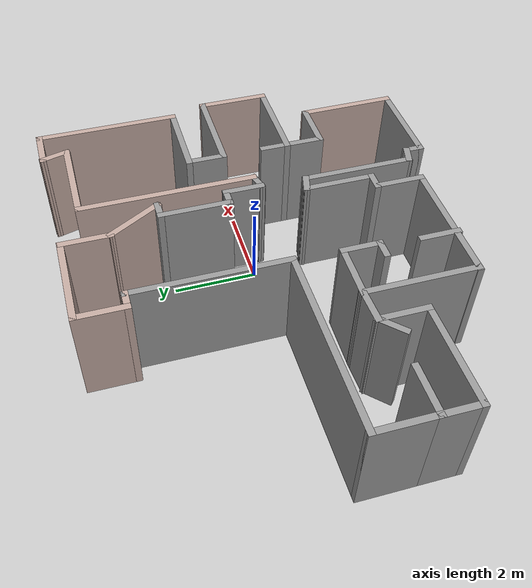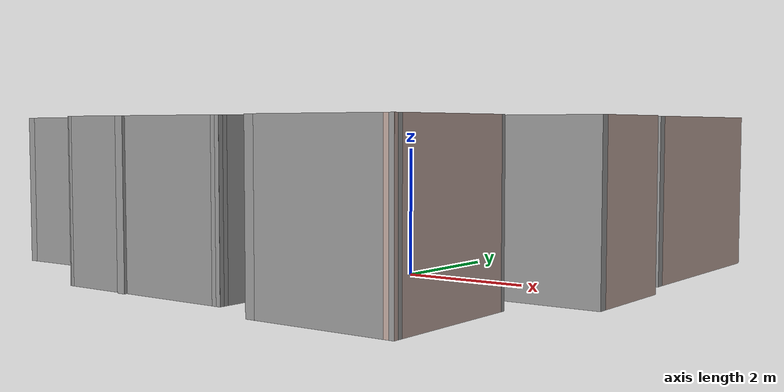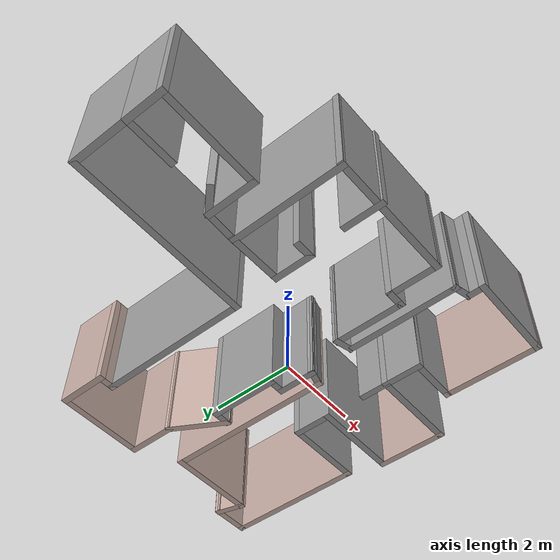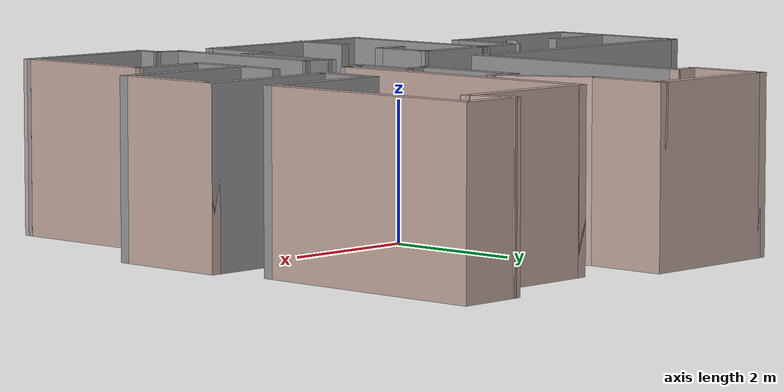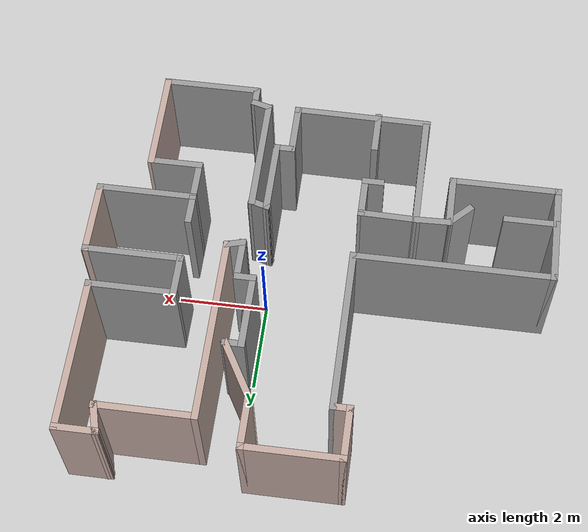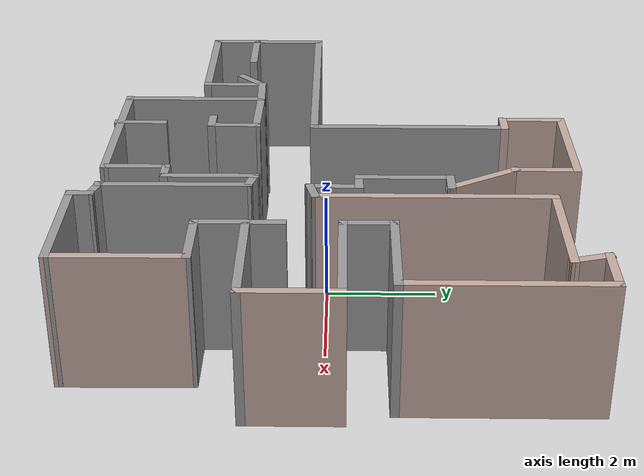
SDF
<?xml version='1.0'?>
<sdf version='1.6'>
  <model name='map_16'>
    <pose frame=''>-1.22365 0.054974 0 0 -0 0</pose>
    <link name='Wall_0'>
      <collision name='Wall_0_Collision'>
        <geometry>
          <box>
            <size>2.25 0.15 2.5</size>
          </box>
        </geometry>
        <pose frame=''>0 0 1.25 0 -0 0</pose>
      </collision>
      <visual name='Wall_0_Visual'>
        <pose frame=''>0 0 1.25 0 -0 0</pose>
        <geometry>
          <box>
            <size>2.25 0.15 2.5</size>
          </box>
        </geometry>
        <material>
          <script>
            <uri>file://media/materials/scripts/gazebo.material</uri>
            <name>Gazebo/Grey</name>
          </script>
          <ambient>0.180392 0.203922 0.211765 1</ambient>
        </material>
        <meta>
          <layer>0</layer>
        </meta>
      </visual>
      <pose frame=''>3.04726 -4.44921 0 0 -0 3.14159</pose>
    </link>
    <link name='Wall_1'>
      <collision name='Wall_1_Collision'>
        <geometry>
          <box>
            <size>0.5 0.15 2.5</size>
          </box>
        </geometry>
        <pose frame=''>0 0 1.25 0 -0 0</pose>
      </collision>
      <visual name='Wall_1_Visual'>
        <pose frame=''>0 0 1.25 0 -0 0</pose>
        <geometry>
          <box>
            <size>0.5 0.15 2.5</size>
          </box>
        </geometry>
        <material>
          <script>
            <uri>file://media/materials/scripts/gazebo.material</uri>
            <name>Gazebo/Grey</name>
          </script>
          <ambient>0.180392 0.203922 0.211765 1</ambient>
        </material>
        <meta>
          <layer>0</layer>
        </meta>
      </visual>
      <pose frame=''>1.99726 -4.27421 0 0 -0 1.5708</pose>
    </link>
    <link name='Wall_10'>
      <collision name='Wall_10_Collision'>
        <geometry>
          <box>
            <size>3.13887 0.15 2.5</size>
          </box>
        </geometry>
        <pose frame=''>0 0 1.25 0 -0 0</pose>
      </collision>
      <visual name='Wall_10_Visual'>
        <pose frame=''>0 0 1.25 0 -0 0</pose>
        <geometry>
          <box>
            <size>3.13887 0.15 2.5</size>
          </box>
        </geometry>
        <material>
          <script>
            <uri>file://media/materials/scripts/gazebo.material</uri>
            <name>Gazebo/Grey</name>
          </script>
          <ambient>0.180392 0.203922 0.211765 1</ambient>
        </material>
        <meta>
          <layer>0</layer>
        </meta>
      </visual>
      <pose frame=''>-0.523283 -4.00647 0 0 -0 3.13385</pose>
    </link>
    <link name='Wall_11'>
      <collision name='Wall_11_Collision'>
        <geometry>
          <box>
            <size>2.75 0.15 2.5</size>
          </box>
        </geometry>
        <pose frame=''>0 0 1.25 0 -0 0</pose>
      </collision>
      <visual name='Wall_11_Visual'>
        <pose frame=''>0 0 1.25 0 -0 0</pose>
        <geometry>
          <box>
            <size>2.75 0.15 2.5</size>
          </box>
        </geometry>
        <material>
          <script>
            <uri>file://media/materials/scripts/gazebo.material</uri>
            <name>Gazebo/Grey</name>
          </script>
          <ambient>0.180392 0.203922 0.211765 1</ambient>
        </material>
        <meta>
          <layer>0</layer>
        </meta>
      </visual>
      <pose frame=''>-1.99454 -2.69491 0 0 -0 1.5708</pose>
    </link>
    <link name='Wall_12'>
      <collision name='Wall_12_Collision'>
        <geometry>
          <box>
            <size>1.389 0.15 2.5</size>
          </box>
        </geometry>
        <pose frame=''>0 0 1.25 0 -0 0</pose>
      </collision>
      <visual name='Wall_12_Visual'>
        <pose frame=''>0 0 1.25 0 -0 0</pose>
        <geometry>
          <box>
            <size>1.389 0.15 2.5</size>
          </box>
        </geometry>
        <material>
          <script>
            <uri>file://media/materials/scripts/gazebo.material</uri>
            <name>Gazebo/Grey</name>
          </script>
          <ambient>0.180392 0.203922 0.211765 1</ambient>
        </material>
        <meta>
          <layer>0</layer>
        </meta>
      </visual>
      <pose frame=''>-1.39828 -1.40647 0 0 -0 -0.01867</pose>
    </link>
    <link name='Wall_13'>
      <collision name='Wall_13_Collision'>
        <geometry>
          <box>
            <size>1 0.15 2.5</size>
          </box>
        </geometry>
        <pose frame=''>0 0 1.25 0 -0 0</pose>
      </collision>
      <visual name='Wall_13_Visual'>
        <pose frame=''>0 0 1.25 0 -0 0</pose>
        <geometry>
          <box>
            <size>1 0.15 2.5</size>
          </box>
        </geometry>
        <material>
          <script>
            <uri>file://media/materials/scripts/gazebo.material</uri>
            <name>Gazebo/Grey</name>
          </script>
          <ambient>0.180392 0.203922 0.211765 1</ambient>
        </material>
        <meta>
          <layer>0</layer>
        </meta>
      </visual>
      <pose frame=''>-0.778891 -1.84304 0 0 -0 -1.5708</pose>
    </link>
    <link name='Wall_14'>
      <collision name='Wall_14_Collision'>
        <geometry>
          <box>
            <size>0.5 0.15 2.5</size>
          </box>
        </geometry>
        <pose frame=''>0 0 1.25 0 -0 0</pose>
      </collision>
      <visual name='Wall_14_Visual'>
        <pose frame=''>0 0 1.25 0 -0 0</pose>
        <geometry>
          <box>
            <size>0.5 0.15 2.5</size>
          </box>
        </geometry>
        <material>
          <script>
            <uri>file://media/materials/scripts/gazebo.material</uri>
            <name>Gazebo/Grey</name>
          </script>
          <ambient>0.180392 0.203922 0.211765 1</ambient>
        </material>
        <meta>
          <layer>0</layer>
        </meta>
      </visual>
      <pose frame=''>-0.953891 -2.26804 0 0 -0 3.14159</pose>
    </link>
    <link name='Wall_16'>
      <collision name='Wall_16_Collision'>
        <geometry>
          <box>
            <size>1 0.15 2.5</size>
          </box>
        </geometry>
        <pose frame=''>0 0 1.25 0 -0 0</pose>
      </collision>
      <visual name='Wall_16_Visual'>
        <pose frame=''>0 0 1.25 0 -0 0</pose>
        <geometry>
          <box>
            <size>1 0.15 2.5</size>
          </box>
        </geometry>
        <material>
          <script>
            <uri>file://media/materials/scripts/gazebo.material</uri>
            <name>Gazebo/Grey</name>
          </script>
          <ambient>0.180392 0.203922 0.211765 1</ambient>
        </material>
        <meta>
          <layer>0</layer>
        </meta>
      </visual>
      <pose frame=''>-0.888867 -3.62729 0 0 -0 -1.5708</pose>
    </link>
    <link name='Wall_18'>
      <collision name='Wall_18_Collision'>
        <geometry>
          <box>
            <size>0.861592 0.15 2.5</size>
          </box>
        </geometry>
        <pose frame=''>0 0 1.25 0 -0 0</pose>
      </collision>
      <visual name='Wall_18_Visual'>
        <pose frame=''>0 0 1.25 0 -0 0</pose>
        <geometry>
          <box>
            <size>0.861592 0.15 2.5</size>
          </box>
        </geometry>
        <material>
          <script>
            <uri>file://media/materials/scripts/gazebo.material</uri>
            <name>Gazebo/Grey</name>
          </script>
          <ambient>0.180392 0.203922 0.211765 1</ambient>
        </material>
        <meta>
          <layer>0</layer>
        </meta>
      </visual>
      <pose frame=''>-2.37328 -1.40647 0 0 -0 -3.10908</pose>
    </link>
    <link name='Wall_19'>
      <collision name='Wall_19_Collision'>
        <geometry>
          <box>
            <size>1.25 0.15 2.5</size>
          </box>
        </geometry>
        <pose frame=''>0 0 1.25 0 -0 0</pose>
      </collision>
      <visual name='Wall_19_Visual'>
        <pose frame=''>0 0 1.25 0 -0 0</pose>
        <geometry>
          <box>
            <size>1.25 0.15 2.5</size>
          </box>
        </geometry>
        <material>
          <script>
            <uri>file://media/materials/scripts/gazebo.material</uri>
            <name>Gazebo/Grey</name>
          </script>
          <ambient>0.180392 0.203922 0.211765 1</ambient>
        </material>
        <meta>
          <layer>0</layer>
        </meta>
      </visual>
      <pose frame=''>-2.72889 -1.96804 0 0 -0 -1.5708</pose>
    </link>
    <link name='Wall_2'>
      <collision name='Wall_2_Collision'>
        <geometry>
          <box>
            <size>0.5 0.15 2.5</size>
          </box>
        </geometry>
        <pose frame=''>0 0 1.25 0 -0 0</pose>
      </collision>
      <visual name='Wall_2_Visual'>
        <pose frame=''>0 0 1.25 0 -0 0</pose>
        <geometry>
          <box>
            <size>0.5 0.15 2.5</size>
          </box>
        </geometry>
        <material>
          <script>
            <uri>file://media/materials/scripts/gazebo.material</uri>
            <name>Gazebo/Grey</name>
          </script>
          <ambient>0.180392 0.203922 0.211765 1</ambient>
        </material>
        <meta>
          <layer>0</layer>
        </meta>
      </visual>
      <pose frame=''>1.82822 -4.05392 0 0 -0 2.87979</pose>
    </link>
    <link name='Wall_20'>
      <collision name='Wall_20_Collision'>
        <geometry>
          <box>
            <size>2.5 0.15 2.5</size>
          </box>
        </geometry>
        <pose frame=''>0 0 1.25 0 -0 0</pose>
      </collision>
      <visual name='Wall_20_Visual'>
        <pose frame=''>0 0 1.25 0 -0 0</pose>
        <geometry>
          <box>
            <size>2.5 0.15 2.5</size>
          </box>
        </geometry>
        <material>
          <script>
            <uri>file://media/materials/scripts/gazebo.material</uri>
            <name>Gazebo/Grey</name>
          </script>
          <ambient>0.180392 0.203922 0.211765 1</ambient>
        </material>
        <meta>
          <layer>0</layer>
        </meta>
      </visual>
      <pose frame=''>-3.90389 -2.51804 0 0 -0 3.14159</pose>
    </link>
    <link name='Wall_21'>
      <collision name='Wall_21_Collision'>
        <geometry>
          <box>
            <size>1 0.15 2.5</size>
          </box>
        </geometry>
        <pose frame=''>0 0 1.25 0 -0 0</pose>
      </collision>
      <visual name='Wall_21_Visual'>
        <pose frame=''>0 0 1.25 0 -0 0</pose>
        <geometry>
          <box>
            <size>1 0.15 2.5</size>
          </box>
        </geometry>
        <material>
          <script>
            <uri>file://media/materials/scripts/gazebo.material</uri>
            <name>Gazebo/Grey</name>
          </script>
          <ambient>0.180392 0.203922 0.211765 1</ambient>
        </material>
        <meta>
          <layer>0</layer>
        </meta>
      </visual>
      <pose frame=''>-5.07889 -2.09304 0 0 -0 1.5708</pose>
    </link>
    <link name='Wall_22'>
      <collision name='Wall_22_Collision'>
        <geometry>
          <box>
            <size>1.25 0.15 2.5</size>
          </box>
        </geometry>
        <pose frame=''>0 0 1.25 0 -0 0</pose>
      </collision>
      <visual name='Wall_22_Visual'>
        <pose frame=''>0 0 1.25 0 -0 0</pose>
        <geometry>
          <box>
            <size>1.25 0.15 2.5</size>
          </box>
        </geometry>
        <material>
          <script>
            <uri>file://media/materials/scripts/gazebo.material</uri>
            <name>Gazebo/Grey</name>
          </script>
          <ambient>0.180392 0.203922 0.211765 1</ambient>
        </material>
        <meta>
          <layer>0</layer>
        </meta>
      </visual>
      <pose frame=''>-4.52889 -1.66804 0 0 -0 0</pose>
    </link>
    <link name='Wall_24'>
      <collision name='Wall_24_Collision'>
        <geometry>
          <box>
            <size>0.75 0.15 2.5</size>
          </box>
        </geometry>
        <pose frame=''>0 0 1.25 0 -0 0</pose>
      </collision>
      <visual name='Wall_24_Visual'>
        <pose frame=''>0 0 1.25 0 -0 0</pose>
        <geometry>
          <box>
            <size>0.75 0.15 2.5</size>
          </box>
        </geometry>
        <material>
          <script>
            <uri>file://media/materials/scripts/gazebo.material</uri>
            <name>Gazebo/Grey</name>
          </script>
          <ambient>0.180392 0.203922 0.211765 1</ambient>
        </material>
        <meta>
          <layer>0</layer>
        </meta>
      </visual>
      <pose frame=''>-2.94102 -1.63017 0 0 -0 -2.35619</pose>
    </link>
    <link name='Wall_26'>
      <collision name='Wall_26_Collision'>
        <geometry>
          <box>
            <size>1.5 0.15 2.5</size>
          </box>
        </geometry>
        <pose frame=''>0 0 1.25 0 -0 0</pose>
      </collision>
      <visual name='Wall_26_Visual'>
        <pose frame=''>0 0 1.25 0 -0 0</pose>
        <geometry>
          <box>
            <size>1.5 0.15 2.5</size>
          </box>
        </geometry>
        <material>
          <script>
            <uri>file://media/materials/scripts/gazebo.material</uri>
            <name>Gazebo/Grey</name>
          </script>
          <ambient>0.180392 0.203922 0.211765 1</ambient>
        </material>
        <meta>
          <layer>0</layer>
        </meta>
      </visual>
      <pose frame=''>-5.07889 -0.993038 0 0 -0 1.5708</pose>
    </link>
    <link name='Wall_27'>
      <collision name='Wall_27_Collision'>
        <geometry>
          <box>
            <size>4.5 0.15 2.5</size>
          </box>
        </geometry>
        <pose frame=''>0 0 1.25 0 -0 0</pose>
      </collision>
      <visual name='Wall_27_Visual'>
        <pose frame=''>0 0 1.25 0 -0 0</pose>
        <geometry>
          <box>
            <size>4.5 0.15 2.5</size>
          </box>
        </geometry>
        <material>
          <script>
            <uri>file://media/materials/scripts/gazebo.material</uri>
            <name>Gazebo/Grey</name>
          </script>
          <ambient>0.180392 0.203922 0.211765 1</ambient>
        </material>
        <meta>
          <layer>0</layer>
        </meta>
      </visual>
      <pose frame=''>-2.90389 -0.318038 0 0 -0 0</pose>
    </link>
    <link name='Wall_28'>
      <collision name='Wall_28_Collision'>
        <geometry>
          <box>
            <size>3.75 0.15 2.5</size>
          </box>
        </geometry>
        <pose frame=''>0 0 1.25 0 -0 0</pose>
      </collision>
      <visual name='Wall_28_Visual'>
        <pose frame=''>0 0 1.25 0 -0 0</pose>
        <geometry>
          <box>
            <size>3.75 0.15 2.5</size>
          </box>
        </geometry>
        <material>
          <script>
            <uri>file://media/materials/scripts/gazebo.material</uri>
            <name>Gazebo/Grey</name>
          </script>
          <ambient>0.180392 0.203922 0.211765 1</ambient>
        </material>
        <meta>
          <layer>0</layer>
        </meta>
      </visual>
      <pose frame=''>-0.728891 1.48196 0 0 -0 1.5708</pose>
    </link>
    <link name='Wall_29'>
      <collision name='Wall_29_Collision'>
        <geometry>
          <box>
            <size>0.5 0.15 2.5</size>
          </box>
        </geometry>
        <pose frame=''>0 0 1.25 0 -0 0</pose>
      </collision>
      <visual name='Wall_29_Visual'>
        <pose frame=''>0 0 1.25 0 -0 0</pose>
        <geometry>
          <box>
            <size>0.5 0.15 2.5</size>
          </box>
        </geometry>
        <material>
          <script>
            <uri>file://media/materials/scripts/gazebo.material</uri>
            <name>Gazebo/Grey</name>
          </script>
          <ambient>0.760784 0.662745 0.627451 1</ambient>
        </material>
        <meta>
          <layer>0</layer>
        </meta>
      </visual>
      <pose frame=''>-0.903891 3.28196 0 0 -0 3.14159</pose>
    </link>
    <link name='Wall_3'>
      <collision name='Wall_3_Collision'>
        <geometry>
          <box>
            <size>2.75 0.15 2.5</size>
          </box>
        </geometry>
        <pose frame=''>0 0 1.25 0 -0 0</pose>
      </collision>
      <visual name='Wall_3_Visual'>
        <pose frame=''>0 0 1.25 0 -0 0</pose>
        <geometry>
          <box>
            <size>2.75 0.15 2.5</size>
          </box>
        </geometry>
        <material>
          <script>
            <uri>file://media/materials/scripts/gazebo.material</uri>
            <name>Gazebo/Grey</name>
          </script>
          <ambient>0.180392 0.203922 0.211765 1</ambient>
        </material>
        <meta>
          <layer>0</layer>
        </meta>
      </visual>
      <pose frame=''>1.65918 -2.70863 0 0 -0 1.5708</pose>
    </link>
    <link name='Wall_30'>
      <collision name='Wall_30_Collision'>
        <geometry>
          <box>
            <size>1.25 0.15 2.5</size>
          </box>
        </geometry>
        <pose frame=''>0 0 1.25 0 -0 0</pose>
      </collision>
      <visual name='Wall_30_Visual'>
        <pose frame=''>0 0 1.25 0 -0 0</pose>
        <geometry>
          <box>
            <size>1.25 0.15 2.5</size>
          </box>
        </geometry>
        <material>
          <script>
            <uri>file://media/materials/scripts/gazebo.material</uri>
            <name>Gazebo/Grey</name>
          </script>
          <ambient>0.760784 0.662745 0.627451 1</ambient>
        </material>
        <meta>
          <layer>0</layer>
        </meta>
      </visual>
      <pose frame=''>-1.07889 3.83196 0 0 -0 1.5708</pose>
    </link>
    <link name='Wall_31'>
      <collision name='Wall_31_Collision'>
        <geometry>
          <box>
            <size>2.25 0.15 2.5</size>
          </box>
        </geometry>
        <pose frame=''>0 0 1.25 0 -0 0</pose>
      </collision>
      <visual name='Wall_31_Visual'>
        <pose frame=''>0 0 1.25 0 -0 0</pose>
        <geometry>
          <box>
            <size>2.25 0.15 2.5</size>
          </box>
        </geometry>
        <material>
          <script>
            <uri>file://media/materials/scripts/gazebo.material</uri>
            <name>Gazebo/Grey</name>
          </script>
          <ambient>0.760784 0.662745 0.627451 1</ambient>
        </material>
        <meta>
          <layer>0</layer>
        </meta>
      </visual>
      <pose frame=''>-0.028891 4.38196 0 0 -0 0</pose>
    </link>
    <link name='Wall_32'>
      <collision name='Wall_32_Collision'>
        <geometry>
          <box>
            <size>1.25 0.15 2.5</size>
          </box>
        </geometry>
        <pose frame=''>0 0 1.25 0 -0 0</pose>
      </collision>
      <visual name='Wall_32_Visual'>
        <pose frame=''>0 0 1.25 0 -0 0</pose>
        <geometry>
          <box>
            <size>1.25 0.15 2.5</size>
          </box>
        </geometry>
        <material>
          <script>
            <uri>file://media/materials/scripts/gazebo.material</uri>
            <name>Gazebo/Grey</name>
          </script>
          <ambient>0.760784 0.662745 0.627451 1</ambient>
        </material>
        <meta>
          <layer>0</layer>
        </meta>
      </visual>
      <pose frame=''>1.02111 3.83196 0 0 -0 -1.5708</pose>
    </link>
    <link name='Wall_33'>
      <collision name='Wall_33_Collision'>
        <geometry>
          <box>
            <size>1.5 0.15 2.5</size>
          </box>
        </geometry>
        <pose frame=''>0 0 1.25 0 -0 0</pose>
      </collision>
      <visual name='Wall_33_Visual'>
        <pose frame=''>0 0 1.25 0 -0 0</pose>
        <geometry>
          <box>
            <size>1.5 0.15 2.5</size>
          </box>
        </geometry>
        <material>
          <script>
            <uri>file://media/materials/scripts/gazebo.material</uri>
            <name>Gazebo/Grey</name>
          </script>
          <ambient>0.760784 0.662745 0.627451 1</ambient>
        </material>
        <meta>
          <layer>0</layer>
        </meta>
      </visual>
      <pose frame=''>1.35861 2.6974 0 0 -0 -1.0472</pose>
    </link>
    <link name='Wall_34'>
      <collision name='Wall_34_Collision'>
        <geometry>
          <box>
            <size>0.5 0.15 2.5</size>
          </box>
        </geometry>
        <pose frame=''>0 0 1.25 0 -0 0</pose>
      </collision>
      <visual name='Wall_34_Visual'>
        <pose frame=''>0 0 1.25 0 -0 0</pose>
        <geometry>
          <box>
            <size>0.5 0.15 2.5</size>
          </box>
        </geometry>
        <material>
          <script>
            <uri>file://media/materials/scripts/gazebo.material</uri>
            <name>Gazebo/Grey</name>
          </script>
          <ambient>1 1 1 1</ambient>
        </material>
        <meta>
          <layer>0</layer>
        </meta>
      </visual>
      <pose frame=''>1.52111 2.11283 0 0 -0 3.14159</pose>
    </link>
    <link name='Wall_35'>
      <collision name='Wall_35_Collision'>
        <geometry>
          <box>
            <size>1.75 0.15 2.5</size>
          </box>
        </geometry>
        <pose frame=''>0 0 1.25 0 -0 0</pose>
      </collision>
      <visual name='Wall_35_Visual'>
        <pose frame=''>0 0 1.25 0 -0 0</pose>
        <geometry>
          <box>
            <size>1.75 0.15 2.5</size>
          </box>
        </geometry>
        <material>
          <script>
            <uri>file://media/materials/scripts/gazebo.material</uri>
            <name>Gazebo/Grey</name>
          </script>
          <ambient>0.180392 0.203922 0.211765 1</ambient>
        </material>
        <meta>
          <layer>0</layer>
        </meta>
      </visual>
      <pose frame=''>1.34611 1.31283 0 0 -0 -1.5708</pose>
    </link>
    <link name='Wall_36'>
      <collision name='Wall_36_Collision'>
        <geometry>
          <box>
            <size>0.5 0.15 2.5</size>
          </box>
        </geometry>
        <pose frame=''>0 0 1.25 0 -0 0</pose>
      </collision>
      <visual name='Wall_36_Visual'>
        <pose frame=''>0 0 1.25 0 -0 0</pose>
        <geometry>
          <box>
            <size>0.5 0.15 2.5</size>
          </box>
        </geometry>
        <material>
          <script>
            <uri>file://media/materials/scripts/gazebo.material</uri>
            <name>Gazebo/Grey</name>
          </script>
          <ambient>0.180392 0.203922 0.211765 1</ambient>
        </material>
        <meta>
          <layer>0</layer>
        </meta>
      </visual>
      <pose frame=''>1.52111 0.512828 0 0 -0 0</pose>
    </link>
    <link name='Wall_37'>
      <collision name='Wall_37_Collision'>
        <geometry>
          <box>
            <size>1 0.15 2.5</size>
          </box>
        </geometry>
        <pose frame=''>0 0 1.25 0 -0 0</pose>
      </collision>
      <visual name='Wall_37_Visual'>
        <pose frame=''>0 0 1.25 0 -0 0</pose>
        <geometry>
          <box>
            <size>1 0.15 2.5</size>
          </box>
        </geometry>
        <material>
          <script>
            <uri>file://media/materials/scripts/gazebo.material</uri>
            <name>Gazebo/Grey</name>
          </script>
          <ambient>0.180392 0.203922 0.211765 1</ambient>
        </material>
        <meta>
          <layer>0</layer>
        </meta>
      </visual>
      <pose frame=''>1.69611 0.087828 0 0 -0 -1.5708</pose>
    </link>
    <link name='Wall_38'>
      <collision name='Wall_38_Collision'>
        <geometry>
          <box>
            <size>0.5 0.15 2.5</size>
          </box>
        </geometry>
        <pose frame=''>0 0 1.25 0 -0 0</pose>
      </collision>
      <visual name='Wall_38_Visual'>
        <pose frame=''>0 0 1.25 0 -0 0</pose>
        <geometry>
          <box>
            <size>0.5 0.15 2.5</size>
          </box>
        </geometry>
        <material>
          <script>
            <uri>file://media/materials/scripts/gazebo.material</uri>
            <name>Gazebo/Grey</name>
          </script>
          <ambient>0.180392 0.203922 0.211765 1</ambient>
        </material>
        <meta>
          <layer>0</layer>
        </meta>
      </visual>
      <pose frame=''>1.86515 -0.291879 0 0 -0 0.261799</pose>
    </link>
    <link name='Wall_39'>
      <collision name='Wall_39_Collision'>
        <geometry>
          <box>
            <size>4.25 0.15 2.5</size>
          </box>
        </geometry>
        <pose frame=''>0 0 1.25 0 -0 0</pose>
      </collision>
      <visual name='Wall_39_Visual'>
        <pose frame=''>0 0 1.25 0 -0 0</pose>
        <geometry>
          <box>
            <size>4.25 0.15 2.5</size>
          </box>
        </geometry>
        <material>
          <script>
            <uri>file://media/materials/scripts/gazebo.material</uri>
            <name>Gazebo/Grey</name>
          </script>
          <ambient>0.760784 0.662745 0.627451 1</ambient>
        </material>
        <meta>
          <layer>0</layer>
        </meta>
      </visual>
      <pose frame=''>2.03418 1.80341 0 0 -0 1.5708</pose>
    </link>
    <link name='Wall_4'>
      <collision name='Wall_4_Collision'>
        <geometry>
          <box>
            <size>0.5 0.15 2.5</size>
          </box>
        </geometry>
        <pose frame=''>0 0 1.25 0 -0 0</pose>
      </collision>
      <visual name='Wall_4_Visual'>
        <pose frame=''>0 0 1.25 0 -0 0</pose>
        <geometry>
          <box>
            <size>0.5 0.15 2.5</size>
          </box>
        </geometry>
        <material>
          <script>
            <uri>file://media/materials/scripts/gazebo.material</uri>
            <name>Gazebo/Grey</name>
          </script>
          <ambient>0.180392 0.203922 0.211765 1</ambient>
        </material>
        <meta>
          <layer>0</layer>
        </meta>
      </visual>
      <pose frame=''>1.49015 -1.36333 0 0 -0 2.87979</pose>
    </link>
    <link name='Wall_40'>
      <collision name='Wall_40_Collision'>
        <geometry>
          <box>
            <size>2.25 0.15 2.5</size>
          </box>
        </geometry>
        <pose frame=''>0 0 1.25 0 -0 0</pose>
      </collision>
      <visual name='Wall_40_Visual'>
        <pose frame=''>0 0 1.25 0 -0 0</pose>
        <geometry>
          <box>
            <size>2.25 0.15 2.5</size>
          </box>
        </geometry>
        <material>
          <script>
            <uri>file://media/materials/scripts/gazebo.material</uri>
            <name>Gazebo/Grey</name>
          </script>
          <ambient>0.760784 0.662745 0.627451 1</ambient>
        </material>
        <meta>
          <layer>0</layer>
        </meta>
      </visual>
      <pose frame=''>3.08418 3.85341 0 0 -0 0</pose>
    </link>
    <link name='Wall_41'>
      <collision name='Wall_41_Collision'>
        <geometry>
          <box>
            <size>0.75 0.15 2.5</size>
          </box>
        </geometry>
        <pose frame=''>0 0 1.25 0 -0 0</pose>
      </collision>
      <visual name='Wall_41_Visual'>
        <pose frame=''>0 0 1.25 0 -0 0</pose>
        <geometry>
          <box>
            <size>0.75 0.15 2.5</size>
          </box>
        </geometry>
        <material>
          <script>
            <uri>file://media/materials/scripts/gazebo.material</uri>
            <name>Gazebo/Grey</name>
          </script>
          <ambient>0.760784 0.662745 0.627451 1</ambient>
        </material>
        <meta>
          <layer>0</layer>
        </meta>
      </visual>
      <pose frame=''>4.05654 4.14319 0 0 -0 1.8326</pose>
    </link>
    <link name='Wall_42'>
      <collision name='Wall_42_Collision'>
        <geometry>
          <box>
            <size>1 0.15 2.5</size>
          </box>
        </geometry>
        <pose frame=''>0 0 1.25 0 -0 0</pose>
      </collision>
      <visual name='Wall_42_Visual'>
        <pose frame=''>0 0 1.25 0 -0 0</pose>
        <geometry>
          <box>
            <size>1 0.15 2.5</size>
          </box>
        </geometry>
        <material>
          <script>
            <uri>file://media/materials/scripts/gazebo.material</uri>
            <name>Gazebo/Grey</name>
          </script>
          <ambient>0.760784 0.662745 0.627451 1</ambient>
        </material>
        <meta>
          <layer>0</layer>
        </meta>
      </visual>
      <pose frame=''>4.40389 4.43297 0 0 -0 0</pose>
    </link>
    <link name='Wall_43'>
      <collision name='Wall_43_Collision'>
        <geometry>
          <box>
            <size>3.5 0.15 2.5</size>
          </box>
        </geometry>
        <pose frame=''>0 0 1.25 0 -0 0</pose>
      </collision>
      <visual name='Wall_43_Visual'>
        <pose frame=''>0 0 1.25 0 -0 0</pose>
        <geometry>
          <box>
            <size>3.5 0.15 2.5</size>
          </box>
        </geometry>
        <material>
          <script>
            <uri>file://media/materials/scripts/gazebo.material</uri>
            <name>Gazebo/Grey</name>
          </script>
          <ambient>0.760784 0.662745 0.627451 1</ambient>
        </material>
        <meta>
          <layer>0</layer>
        </meta>
      </visual>
      <pose frame=''>4.82889 2.75797 0 0 -0 -1.5708</pose>
    </link>
    <link name='Wall_44'>
      <collision name='Wall_44_Collision'>
        <geometry>
          <box>
            <size>2 0.15 2.5</size>
          </box>
        </geometry>
        <pose frame=''>0 0 1.25 0 -0 0</pose>
      </collision>
      <visual name='Wall_44_Visual'>
        <pose frame=''>0 0 1.25 0 -0 0</pose>
        <geometry>
          <box>
            <size>2 0.15 2.5</size>
          </box>
        </geometry>
        <material>
          <script>
            <uri>file://media/materials/scripts/gazebo.material</uri>
            <name>Gazebo/Grey</name>
          </script>
          <ambient>0.180392 0.203922 0.211765 1</ambient>
        </material>
        <meta>
          <layer>0</layer>
        </meta>
      </visual>
      <pose frame=''>3.90389 1.08297 0 0 -0 3.14159</pose>
    </link>
    <link name='Wall_45'>
      <collision name='Wall_45_Collision'>
        <geometry>
          <box>
            <size>1 0.15 2.5</size>
          </box>
        </geometry>
        <pose frame=''>0 0 1.25 0 -0 0</pose>
      </collision>
      <visual name='Wall_45_Visual'>
        <pose frame=''>0 0 1.25 0 -0 0</pose>
        <geometry>
          <box>
            <size>1 0.15 2.5</size>
          </box>
        </geometry>
        <material>
          <script>
            <uri>file://media/materials/scripts/gazebo.material</uri>
            <name>Gazebo/Grey</name>
          </script>
          <ambient>0.180392 0.203922 0.211765 1</ambient>
        </material>
        <meta>
          <layer>0</layer>
        </meta>
      </visual>
      <pose frame=''>2.97889 0.65797 0 0 -0 -1.5708</pose>
    </link>
    <link name='Wall_46'>
      <collision name='Wall_46_Collision'>
        <geometry>
          <box>
            <size>2.25 0.15 2.5</size>
          </box>
        </geometry>
        <pose frame=''>0 0 1.25 0 -0 0</pose>
      </collision>
      <visual name='Wall_46_Visual'>
        <pose frame=''>0 0 1.25 0 -0 0</pose>
        <geometry>
          <box>
            <size>2.25 0.15 2.5</size>
          </box>
        </geometry>
        <material>
          <script>
            <uri>file://media/materials/scripts/gazebo.material</uri>
            <name>Gazebo/Grey</name>
          </script>
          <ambient>0.180392 0.203922 0.211765 1</ambient>
        </material>
        <meta>
          <layer>0</layer>
        </meta>
      </visual>
      <pose frame=''>4.02889 0.23297 0 0 -0 0</pose>
    </link>
    <link name='Wall_47'>
      <collision name='Wall_47_Collision'>
        <geometry>
          <box>
            <size>1.75 0.15 2.5</size>
          </box>
        </geometry>
        <pose frame=''>0 0 1.25 0 -0 0</pose>
      </collision>
      <visual name='Wall_47_Visual'>
        <pose frame=''>0 0 1.25 0 -0 0</pose>
        <geometry>
          <box>
            <size>1.75 0.15 2.5</size>
          </box>
        </geometry>
        <material>
          <script>
            <uri>file://media/materials/scripts/gazebo.material</uri>
            <name>Gazebo/Grey</name>
          </script>
          <ambient>0.760784 0.662745 0.627451 1</ambient>
        </material>
        <meta>
          <layer>0</layer>
        </meta>
      </visual>
      <pose frame=''>5.07889 -0.56703 0 0 -0 -1.5708</pose>
    </link>
    <link name='Wall_48'>
      <collision name='Wall_48_Collision'>
        <geometry>
          <box>
            <size>2.25 0.15 2.5</size>
          </box>
        </geometry>
        <pose frame=''>0 0 1.25 0 -0 0</pose>
      </collision>
      <visual name='Wall_48_Visual'>
        <pose frame=''>0 0 1.25 0 -0 0</pose>
        <geometry>
          <box>
            <size>2.25 0.15 2.5</size>
          </box>
        </geometry>
        <material>
          <script>
            <uri>file://media/materials/scripts/gazebo.material</uri>
            <name>Gazebo/Grey</name>
          </script>
          <ambient>0.180392 0.203922 0.211765 1</ambient>
        </material>
        <meta>
          <layer>0</layer>
        </meta>
      </visual>
      <pose frame=''>4.02889 -1.36703 0 0 -0 3.14159</pose>
    </link>
    <link name='Wall_49'>
      <collision name='Wall_49_Collision'>
        <geometry>
          <box>
            <size>0.75 0.15 2.5</size>
          </box>
        </geometry>
        <pose frame=''>0 0 1.25 0 -0 0</pose>
      </collision>
      <visual name='Wall_49_Visual'>
        <pose frame=''>0 0 1.25 0 -0 0</pose>
        <geometry>
          <box>
            <size>0.75 0.15 2.5</size>
          </box>
        </geometry>
        <material>
          <script>
            <uri>file://media/materials/scripts/gazebo.material</uri>
            <name>Gazebo/Grey</name>
          </script>
          <ambient>0.180392 0.203922 0.211765 1</ambient>
        </material>
        <meta>
          <layer>0</layer>
        </meta>
      </visual>
      <pose frame=''>2.97889 -1.06703 0 0 -0 1.5708</pose>
    </link>
    <link name='Wall_5'>
      <collision name='Wall_5_Collision'>
        <geometry>
          <box>
            <size>1.75 0.15 2.5</size>
          </box>
        </geometry>
        <pose frame=''>0 0 1.25 0 -0 0</pose>
      </collision>
      <visual name='Wall_5_Visual'>
        <pose frame=''>0 0 1.25 0 -0 0</pose>
        <geometry>
          <box>
            <size>1.75 0.15 2.5</size>
          </box>
        </geometry>
        <material>
          <script>
            <uri>file://media/materials/scripts/gazebo.material</uri>
            <name>Gazebo/Grey</name>
          </script>
          <ambient>0.180392 0.203922 0.211765 1</ambient>
        </material>
        <meta>
          <layer>0</layer>
        </meta>
      </visual>
      <pose frame=''>1.32111 -2.11804 0 0 -0 -1.5708</pose>
    </link>
    <link name='Wall_51'>
      <collision name='Wall_51_Collision'>
        <geometry>
          <box>
            <size>1 0.15 2.5</size>
          </box>
        </geometry>
        <pose frame=''>0 0 1.25 0 -0 0</pose>
      </collision>
      <visual name='Wall_51_Visual'>
        <pose frame=''>0 0 1.25 0 -0 0</pose>
        <geometry>
          <box>
            <size>1 0.15 2.5</size>
          </box>
        </geometry>
        <material>
          <script>
            <uri>file://media/materials/scripts/gazebo.material</uri>
            <name>Gazebo/Grey</name>
          </script>
          <ambient>0.180392 0.203922 0.211765 1</ambient>
        </material>
        <meta>
          <layer>0</layer>
        </meta>
      </visual>
      <pose frame=''>2.97889 -1.79203 0 0 -0 -1.5708</pose>
    </link>
    <link name='Wall_52'>
      <collision name='Wall_52_Collision'>
        <geometry>
          <box>
            <size>1.25 0.15 2.5</size>
          </box>
        </geometry>
        <pose frame=''>0 0 1.25 0 -0 0</pose>
      </collision>
      <visual name='Wall_52_Visual'>
        <pose frame=''>0 0 1.25 0 -0 0</pose>
        <geometry>
          <box>
            <size>1.25 0.15 2.5</size>
          </box>
        </geometry>
        <material>
          <script>
            <uri>file://media/materials/scripts/gazebo.material</uri>
            <name>Gazebo/Grey</name>
          </script>
          <ambient>0.180392 0.203922 0.211765 1</ambient>
        </material>
        <meta>
          <layer>0</layer>
        </meta>
      </visual>
      <pose frame=''>3.52889 -2.21703 0 0 -0 0</pose>
    </link>
    <link name='Wall_54'>
      <collision name='Wall_54_Collision'>
        <geometry>
          <box>
            <size>2.38226 0.15 2.5</size>
          </box>
        </geometry>
        <pose frame=''>0 0 1.25 0 -0 0</pose>
      </collision>
      <visual name='Wall_54_Visual'>
        <pose frame=''>0 0 1.25 0 -0 0</pose>
        <geometry>
          <box>
            <size>2.38226 0.15 2.5</size>
          </box>
        </geometry>
        <material>
          <script>
            <uri>file://media/materials/scripts/gazebo.material</uri>
            <name>Gazebo/Grey</name>
          </script>
          <ambient>0.760784 0.662745 0.627451 1</ambient>
        </material>
        <meta>
          <layer>0</layer>
        </meta>
      </visual>
      <pose frame=''>4.08807 -3.33312 0 0 -0 -1.56257</pose>
    </link>
    <link name='Wall_8'>
      <collision name='Wall_8_Collision'>
        <geometry>
          <box>
            <size>0.5 0.15 2.5</size>
          </box>
        </geometry>
        <pose frame=''>0 0 1.25 0 -0 0</pose>
      </collision>
      <visual name='Wall_8_Visual'>
        <pose frame=''>0 0 1.25 0 -0 0</pose>
        <geometry>
          <box>
            <size>0.5 0.15 2.5</size>
          </box>
        </geometry>
        <material>
          <script>
            <uri>file://media/materials/scripts/gazebo.material</uri>
            <name>Gazebo/Grey</name>
          </script>
          <ambient>0.180392 0.203922 0.211765 1</ambient>
        </material>
        <meta>
          <layer>0</layer>
        </meta>
      </visual>
      <pose frame=''>1.14611 -2.91804 0 0 -0 3.14159</pose>
    </link>
    <link name='Wall_9'>
      <collision name='Wall_9_Collision'>
        <geometry>
          <box>
            <size>1.25 0.15 2.5</size>
          </box>
        </geometry>
        <pose frame=''>0 0 1.25 0 -0 0</pose>
      </collision>
      <visual name='Wall_9_Visual'>
        <pose frame=''>0 0 1.25 0 -0 0</pose>
        <geometry>
          <box>
            <size>1.25 0.15 2.5</size>
          </box>
        </geometry>
        <material>
          <script>
            <uri>file://media/materials/scripts/gazebo.material</uri>
            <name>Gazebo/Grey</name>
          </script>
          <ambient>0.180392 0.203922 0.211765 1</ambient>
        </material>
        <meta>
          <layer>0</layer>
        </meta>
      </visual>
      <pose frame=''>0.971109 -3.46804 0 0 -0 -1.5708</pose>
    </link>
    <static>1</static>
  </model>
</sdf>
